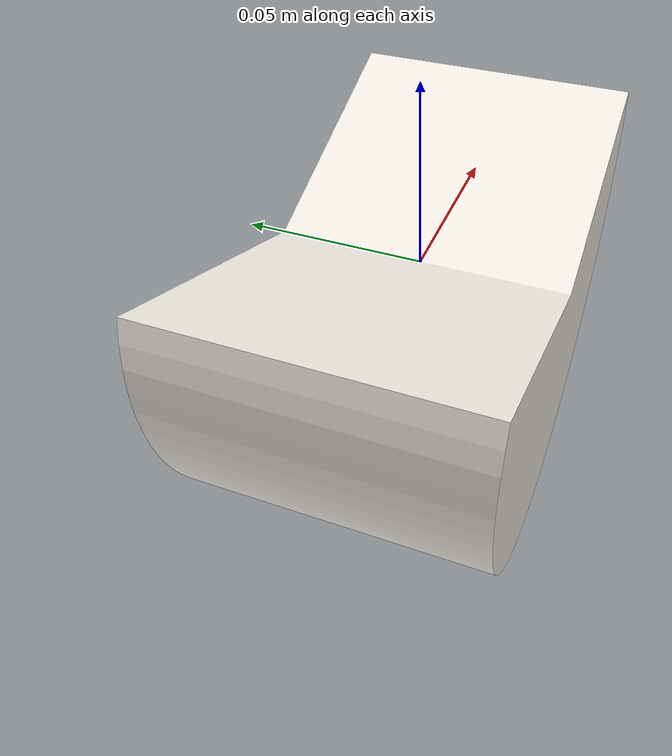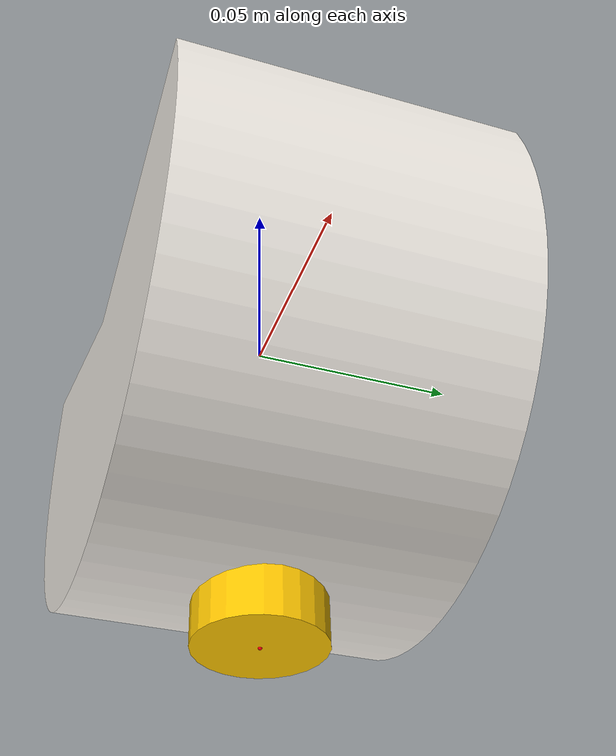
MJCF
<!-- Standalone 220-degree head + eye. Load via params.load_model("face.xml"). No template tokens. -->
<mujoco model="glados_face">

  <compiler angle="radian"/>
  <option timestep="0.002" gravity="0 0 0"/>

  <asset>
    <material name="body" rgba="0.95 0.93 0.90 1" shininess="0.4" specular="0.3"/>
    <material name="eye"  rgba="1.0  0.78 0.0  1" shininess="1.0" specular="0.8" emission="0.4"/>
    <mesh name="head_220" file="head_220.obj"/>
  </asset>

  <worldbody>
    <light name="top" pos="0 0.3 0.5" dir="0 -0.5 -1" diffuse="0.8 0.8 0.8"/>

    <body name="head" pos="0 0 0">
      <!-- 220 deg solid arc, extruded along mesh z; euler turns mesh z into world y (same as glados.xml head). Visual only. -->
      <geom type="mesh" mesh="head_220" euler="1.5708 0 0" mass="1" material="body" contype="0" conaffinity="0"/>

      <!-- IK reference point — tip of eye -->
      <site name="end_effector" pos="0 0 -0.08" size="0.0005" rgba="1 0 0 1"/>

      <!-- Eye — extends/retracts from head -->
      <body name="eye" pos="0 0 -0.07">
        <joint name="eye_joint" type="slide" axis="0 0 -1" pos="0 0 0" limited="true" range="-0.002 0.002"/>
        <geom type="cylinder" size="0.015 0.010" material="eye" contype="0" conaffinity="0"/>
      </body>
    </body>
  </worldbody>

  <actuator>
    <position name="eye_actuator" joint="eye_joint" kp="200" ctrlrange="-0.002 0.002"/>
  </actuator>

</mujoco>
